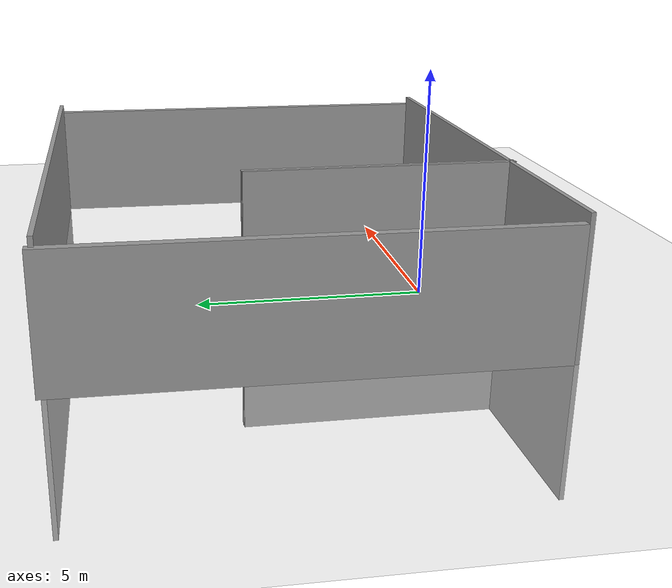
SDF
<sdf version="1.4">
 <world name="default">
  <light name="sun" type="directional">
   <pose>0 0 10 0 -0 0</pose>
   <diffuse>1 1 1 1</diffuse>
   <specular>0.2 0.2 0.2 1</specular>
   <attenuation>
    <range>1000</range>
    <constant>0.9</constant>
    <linear>0.01</linear>
    <quadratic>0.001</quadratic>
   </attenuation>
   <direction>0 0 -0.9</direction>
  </light>
  <model name="ground_plane">
   <static>1</static>
   <link name="link">
    <collision name="collision">
     <geometry><plane><normal>0 0 1</normal><size>100 100</size></plane></geometry>
     <surface><friction><ode><mu>100</mu><mu2>50</mu2></ode></friction></surface>
    </collision>
    <visual name="visual">
     <cast_shadows>0</cast_shadows>
     <geometry><plane><normal>0 0 1</normal><size>100 100</size></plane></geometry>
     <material>
      <script><uri>file://media/materials/scripts/gazebo.material</uri><name>Gazebo/Grey</name></script>
     </material>
    </visual>
    <velocity_decay><linear>0</linear><angular>0</angular></velocity_decay>
   </link>
  </model>
  <physics type="ode">
   <max_step_size>0.001</max_step_size>
   <real_time_factor>1</real_time_factor>
   <real_time_update_rate>1000</real_time_update_rate>
   <gravity>0 0 -9.8</gravity>
  </physics>
  <scene><ambient>0.8 0.8 0.8 1</ambient><background>0.7 0.7 0.7 1</background><shadows>1</shadows></scene>
  <spherical_coordinates>
   <surface_model>EARTH_WGS84</surface_model>
   <latitude_deg>0</latitude_deg>
   <longitude_deg>0</longitude_deg>
   <elevation>0</elevation>
   <heading_deg>0</heading_deg>
  </spherical_coordinates>
  <model name="grey_wall_1">
   <static>1</static>
   <link name="link">
    <pose>6 0 0 0 -0 0</pose>
    <collision name="collision"><geometry><box><size>12 0.1 6</size></box></geometry></collision>
    <visual name="visual">
     <cast_shadows>0</cast_shadows>
     <geometry><box><size>12 0.1 6</size></box></geometry>
     <material>
      <script>
       <uri>model://grey_wall/materials/scripts</uri>
       <uri>model://grey_wall/materials/textures</uri>
       <name>vrc/grey_wall_stone</name>
      </script>
     </material>
    </visual>
    <velocity_decay><linear>0</linear><angular>0</angular></velocity_decay>
   </link>
   <pose>-4.08721 -1.88392 0 0 -0 0</pose>
  </model>
  <model name="grey_wall_2">
   <static>1</static>
   <link name="link">
    <pose>6 8 0 0 -0 0</pose>
    <collision name="collision"><geometry><box><size>12 0.1 6</size></box></geometry></collision>
    <visual name="visual">
     <cast_shadows>0</cast_shadows>
     <geometry><box><size>12 0.1 6</size></box></geometry>
     <material>
      <script>
       <uri>model://grey_wall/materials/scripts</uri>
       <uri>model://grey_wall/materials/textures</uri>
       <name>vrc/grey_wall_triangle</name>
      </script>
     </material>
    </visual>
    <velocity_decay><linear>0</linear><angular>0</angular></velocity_decay>
   </link>
   <pose>-3.95738 0.06232 0 0 -0 0</pose>
  </model>
  <model name="grey_wall_3">
   <static>1</static>
   <link name="link">
    <pose>4.01 3 0 0 -0 1.5708</pose>
    <collision name="collision"><geometry><box><size>6 0.1 6</size></box></geometry></collision>
    <visual name="visual">
     <cast_shadows>0</cast_shadows>
     <geometry><box><size>6 0.1 6</size></box></geometry>
     <material>
      <script>
       <uri>model://grey_wall/materials/scripts</uri>
       <uri>model://grey_wall/materials/textures</uri>
       <name>vrc/grey_wall_triangle</name>
      </script>
     </material>
    </visual>
    <velocity_decay><linear>0</linear><angular>0</angular></velocity_decay>
   </link>
   <pose>-4.04998 -1.97644 0 0 -0 0</pose>
  </model>
  <model name="grey_wall_4">
   <static>1</static>
   <link name="link">
    <pose>3.99 3 0 0 -0 1.5708</pose>
    <collision name="collision"><geometry><box><size>6 0.1 6</size></box></geometry></collision>
    <visual name="visual">
     <cast_shadows>0</cast_shadows>
     <geometry><box><size>6 0.1 6</size></box></geometry>
     <material>
      <script>
       <uri>model://grey_wall/materials/scripts</uri>
       <uri>model://grey_wall/materials/textures</uri>
       <name>vrc/grey_wall_tile</name>
      </script>
     </material>
    </visual>
    <velocity_decay><linear>0</linear><angular>0</angular></velocity_decay>
   </link>
   <pose>-4.11517 -1.99127 0 0 -0 0</pose>
  </model>
  <model name="grey_wall_5">
   <static>1</static>
   <link name="link">
    <pose>0 0 1.4 0 -0 0</pose>
    <collision name="collision"><geometry><box><size>10 0.2 2.8</size></box></geometry></collision>
    <visual name="visual">
     <cast_shadows>0</cast_shadows>
     <geometry><box><size>10 0.2 2.8</size></box></geometry>
     <material>
      <script>
       <uri>model://grey_wall/materials/scripts</uri>
       <uri>model://grey_wall/materials/textures</uri>
       <name>vrc/grey_wall_design</name>
      </script>
     </material>
    </visual>
    <velocity_decay><linear>0</linear><angular>0</angular></velocity_decay>
   </link>
   <pose>-4.00747 3.19307 0 0 -0 1.56183</pose>
  </model>
  <model name="grey_wall_6">
   <static>1</static>
   <link name="link">
    <pose>0 0 1.4 0 -0 0</pose>
    <collision name="collision"><geometry><box><size>10 0.2 2.8</size></box></geometry></collision>
    <visual name="visual">
     <cast_shadows>0</cast_shadows>
     <geometry><box><size>10 0.2 2.8</size></box></geometry>
     <material>
      <script>
       <uri>model://grey_wall/materials/scripts</uri>
       <uri>model://grey_wall/materials/textures</uri>
       <name>vrc/grey_wall_square</name>
      </script>
     </material>
    </visual>
    <velocity_decay><linear>0</linear><angular>0</angular></velocity_decay>
   </link>
   <pose>8.04421 3.0891 0 0 0 -1.58492</pose>
  </model>
 </world>
</sdf>
